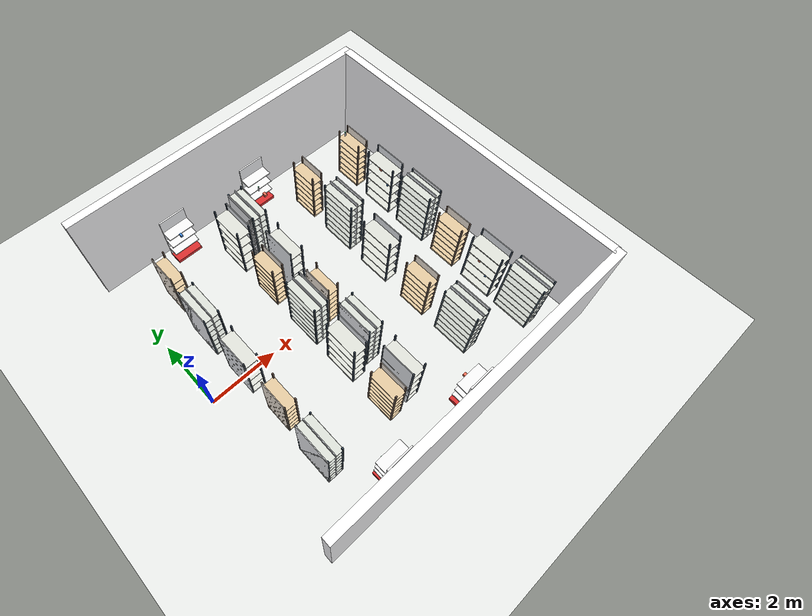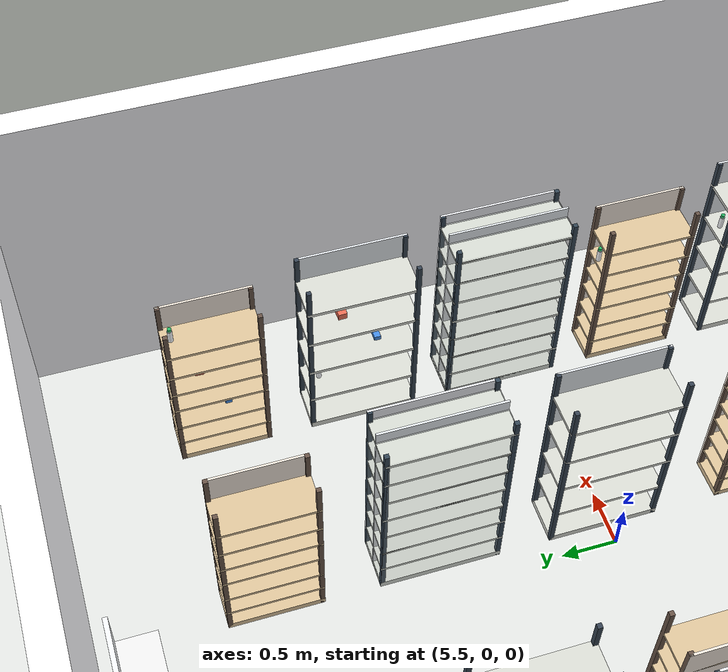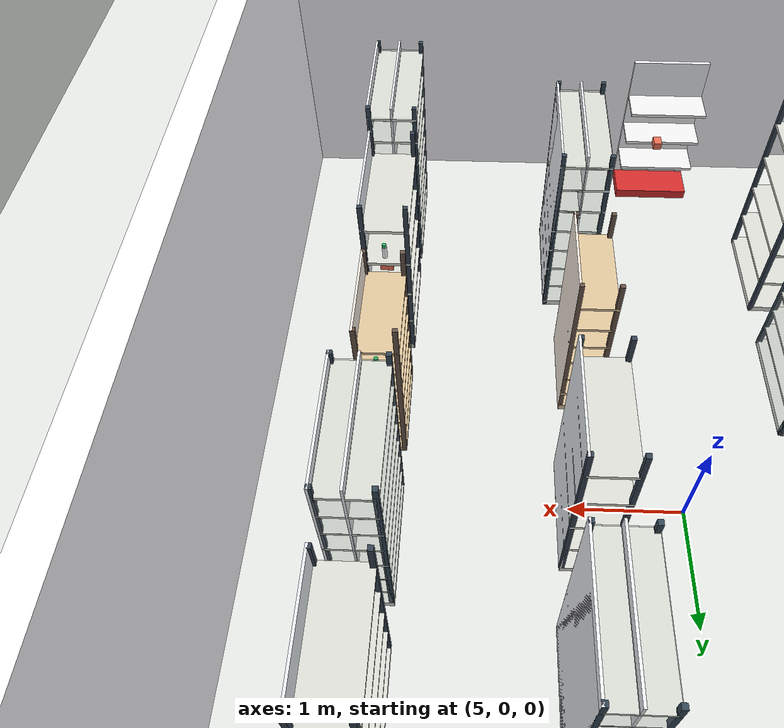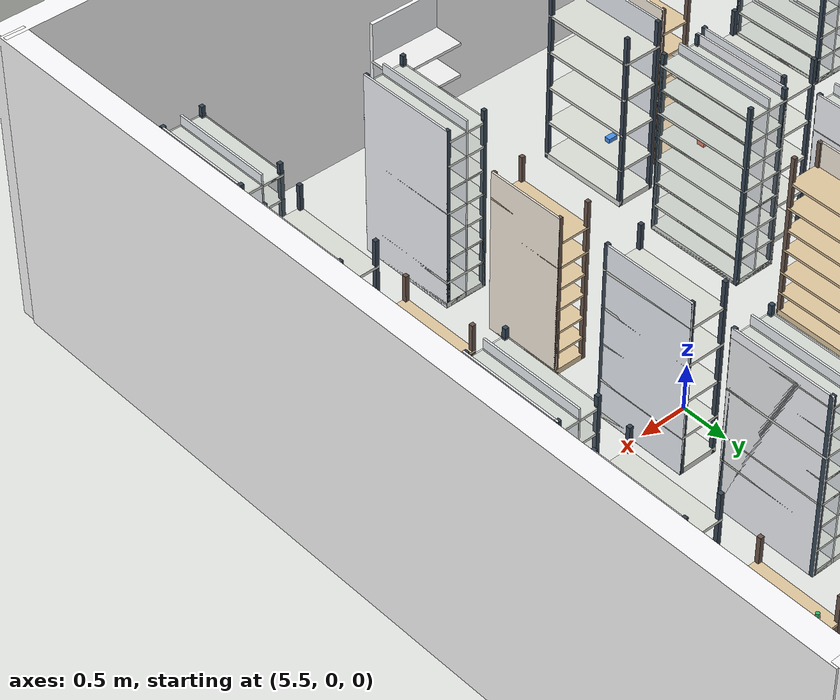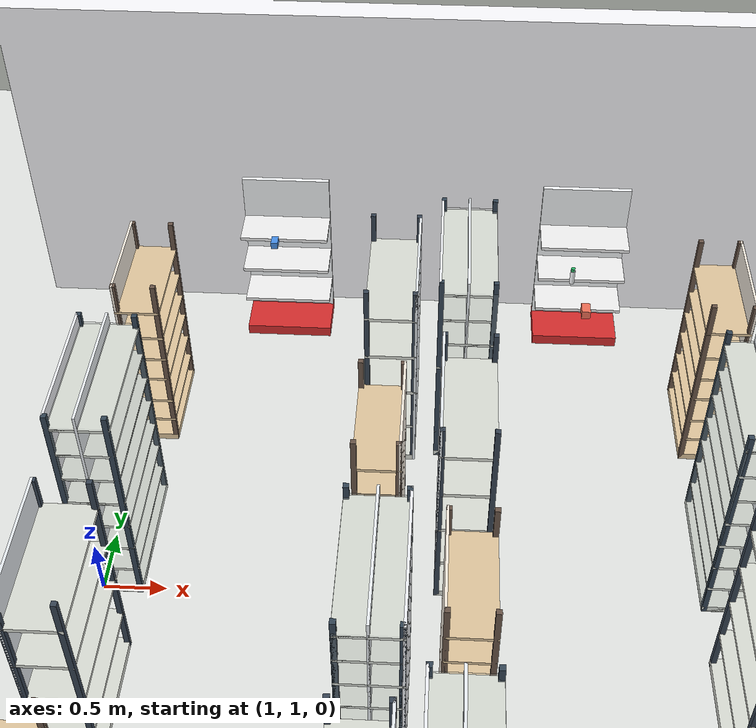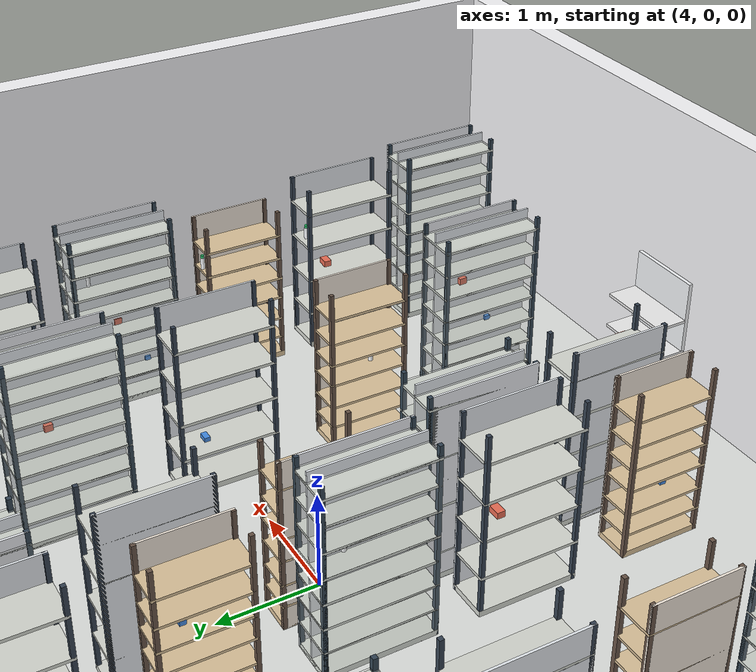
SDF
<?xml version="1.0"?>
<sdf version="1.9">
  <world name="medipick_pharmacy">
    <plugin filename="ignition-gazebo-physics-system" name="ignition::gazebo::systems::Physics"/>
    <plugin filename="ignition-gazebo-user-commands-system" name="ignition::gazebo::systems::UserCommands"/>
    <plugin filename="ignition-gazebo-scene-broadcaster-system" name="ignition::gazebo::systems::SceneBroadcaster"/>
    <plugin filename="ignition-gazebo-sensors-system" name="ignition::gazebo::systems::Sensors">
      <render_engine>ogre2</render_engine>
    </plugin>
    <plugin filename="ignition-gazebo-imu-system" name="ignition::gazebo::systems::Imu"/>
    <plugin filename="ignition-gazebo-contact-system" name="ignition::gazebo::systems::Contact"/>

    <gravity>0 0 -9.8</gravity>

    <scene>
      <ambient>0.74 0.75 0.77 1</ambient>
      <background>0.95 0.96 0.98 1</background>
      <shadows>true</shadows>
    </scene>

    <light name="sun" type="directional">
      <cast_shadows>true</cast_shadows>
      <pose>0 0 12 0 0 0</pose>
      <diffuse>0.88 0.88 0.86 1</diffuse>
      <specular>0.25 0.25 0.25 1</specular>
      <direction>-0.45 0.18 -0.88</direction>
    </light>

    <model name="ground_plane">
      <static>true</static>
      <link name="link">
        <collision name="collision">
          <geometry>
            <plane>
              <normal>0 0 1</normal>
              <size>18 14</size>
            </plane>
          </geometry>
        </collision>
        <visual name="visual">
          <geometry>
            <plane>
              <normal>0 0 1</normal>
              <size>18 14</size>
            </plane>
          </geometry>
          <material>
            <ambient>0.84 0.85 0.84 1</ambient>
            <diffuse>0.90 0.91 0.90 1</diffuse>
            <specular>0.05 0.05 0.05 1</specular>
          </material>
        </visual>
      </link>
    </model>

    <model name="room_shell">
      <static>true</static>
      <link name="walls">
        <collision name="back_wall_collision">
          <pose>8.85 0 1.55 0 0 0</pose>
          <geometry><box><size>0.24 9.20 3.10</size></box></geometry>
        </collision>
        <collision name="left_wall_collision">
          <pose>4.35 4.65 1.55 0 0 0</pose>
          <geometry><box><size>9.20 0.24 3.10</size></box></geometry>
        </collision>
        <collision name="right_wall_collision">
          <pose>4.35 -4.65 1.55 0 0 0</pose>
          <geometry><box><size>9.20 0.24 3.10</size></box></geometry>
        </collision>
        <visual name="back_wall_visual">
          <pose>8.85 0 1.55 0 0 0</pose>
          <geometry><box><size>0.24 9.20 3.10</size></box></geometry>
          <material><ambient>0.96 0.97 0.98 1</ambient><diffuse>0.99 0.99 1.0 1</diffuse></material>
        </visual>
        <visual name="left_wall_visual">
          <pose>4.35 4.65 1.55 0 0 0</pose>
          <geometry><box><size>9.20 0.24 3.10</size></box></geometry>
          <material><ambient>0.96 0.97 0.98 1</ambient><diffuse>0.99 0.99 1.0 1</diffuse></material>
        </visual>
        <visual name="right_wall_visual">
          <pose>4.35 -4.65 1.55 0 0 0</pose>
          <geometry><box><size>9.20 0.24 3.10</size></box></geometry>
          <material><ambient>0.96 0.97 0.98 1</ambient><diffuse>0.99 0.99 1.0 1</diffuse></material>
        </visual>
      </link>
    </model>

    <!-- Back wall shelves -->
    <include><name>back_shelf_01</name><uri>model://pharmacy_shelf_dense</uri><pose>7.45 -3.45 0 0 0 0</pose></include>
    <include><name>back_shelf_02</name><uri>model://pharmacy_shelf</uri><pose>7.45 -2.20 0 0 0 0</pose></include>
    <include><name>back_shelf_03</name><uri>model://pharmacy_shelf_compact</uri><pose>7.45 -0.95 0 0 0 0</pose></include>
    <include><name>back_shelf_04</name><uri>model://pharmacy_shelf_dense</uri><pose>7.45 0.35 0 0 0 0</pose></include>
    <include><name>back_shelf_05</name><uri>model://pharmacy_shelf</uri><pose>7.45 1.70 0 0 0 0</pose></include>
    <include><name>back_shelf_06</name><uri>model://pharmacy_shelf_compact</uri><pose>7.45 3.00 0 0 0 0</pose></include>

    <!-- Aisle A -->
    <include><name>aisle_a_left_01</name><uri>model://pharmacy_shelf_dense</uri><pose>5.70 -2.85 0 0 0 0</pose></include>
    <include><name>aisle_a_left_02</name><uri>model://pharmacy_shelf_compact</uri><pose>5.70 -1.45 0 0 0 0</pose></include>
    <include><name>aisle_a_left_03</name><uri>model://pharmacy_shelf</uri><pose>5.70 0.05 0 0 0 0</pose></include>
    <include><name>aisle_a_left_04</name><uri>model://pharmacy_shelf_dense</uri><pose>5.70 1.55 0 0 0 0</pose></include>
    <include><name>aisle_a_left_05</name><uri>model://pharmacy_shelf_compact</uri><pose>5.70 3.00 0 0 0 0</pose></include>

    <include><name>aisle_a_right_01</name><uri>model://pharmacy_shelf</uri><pose>4.00 -2.80 0 0 0 3.141592653589793</pose></include>
    <include><name>aisle_a_right_02</name><uri>model://pharmacy_shelf_dense</uri><pose>4.00 -1.35 0 0 0 3.141592653589793</pose></include>
    <include><name>aisle_a_right_03</name><uri>model://pharmacy_shelf_compact</uri><pose>4.00 0.10 0 0 0 3.141592653589793</pose></include>
    <include><name>aisle_a_right_04</name><uri>model://pharmacy_shelf</uri><pose>4.00 1.55 0 0 0 3.141592653589793</pose></include>
    <include><name>aisle_a_right_05</name><uri>model://pharmacy_shelf_dense</uri><pose>4.00 3.05 0 0 0 3.141592653589793</pose></include>

    <!-- Aisle B -->
    <include><name>aisle_b_left_01</name><uri>model://pharmacy_shelf_compact</uri><pose>3.00 -2.95 0 0 0 0</pose></include>
    <include><name>aisle_b_left_02</name><uri>model://pharmacy_shelf</uri><pose>3.00 -1.50 0 0 0 0</pose></include>
    <include><name>aisle_b_left_03</name><uri>model://pharmacy_shelf_dense</uri><pose>3.00 -0.05 0 0 0 0</pose></include>
    <include><name>aisle_b_left_04</name><uri>model://pharmacy_shelf_compact</uri><pose>3.00 1.45 0 0 0 0</pose></include>
    <include><name>aisle_b_left_05</name><uri>model://pharmacy_shelf</uri><pose>3.00 2.95 0 0 0 0</pose></include>

    <include><name>aisle_b_right_01</name><uri>model://pharmacy_shelf_dense</uri><pose>1.30 -2.90 0 0 0 3.141592653589793</pose></include>
    <include><name>aisle_b_right_02</name><uri>model://pharmacy_shelf_compact</uri><pose>1.30 -1.45 0 0 0 3.141592653589793</pose></include>
    <include><name>aisle_b_right_03</name><uri>model://pharmacy_shelf</uri><pose>1.30 0.00 0 0 0 3.141592653589793</pose></include>
    <include><name>aisle_b_right_04</name><uri>model://pharmacy_shelf_dense</uri><pose>1.30 1.50 0 0 0 3.141592653589793</pose></include>
    <include><name>aisle_b_right_05</name><uri>model://pharmacy_shelf_compact</uri><pose>1.30 3.00 0 0 0 3.141592653589793</pose></include>

    <!-- Endcap displays -->
    <include><name>endcap_a_top</name><uri>model://pharmacy_endcap_display</uri><pose>4.85 4.00 0 0 0 1.5707963267948966</pose></include>
    <include><name>endcap_a_bottom</name><uri>model://pharmacy_endcap_display</uri><pose>4.85 -4.00 0 0 0 -1.5707963267948966</pose></include>
    <include><name>endcap_b_top</name><uri>model://pharmacy_endcap_display</uri><pose>2.15 4.00 0 0 0 1.5707963267948966</pose></include>
    <include><name>endcap_b_bottom</name><uri>model://pharmacy_endcap_display</uri><pose>2.15 -4.00 0 0 0 -1.5707963267948966</pose></include>

    <!-- Back wall products -->
    <include><name>prod_back_01</name><uri>model://medicine_box_small</uri><pose>7.68 -3.62 0.29 0 0 0</pose></include>
    <include><name>prod_back_02</name><uri>model://medicine_box_medium</uri><pose>7.70 -3.32 0.55 0 0 0.08</pose></include>
    <include><name>prod_back_03</name><uri>model://medicine_bottle</uri><pose>7.67 -3.00 1.07 0 0 0</pose></include>
    <include><name>prod_back_04</name><uri>model://medicine_box_small</uri><pose>7.66 -2.34 0.42 0 0 0</pose></include>
    <include><name>prod_back_05</name><uri>model://medicine_box_medium</uri><pose>7.68 -2.02 0.82 0 0 -0.06</pose></include>
    <include><name>prod_back_06</name><uri>model://medicine_bottle</uri><pose>7.66 -1.78 1.22 0 0 0</pose></include>
    <include><name>prod_back_07</name><uri>model://medicine_box_small</uri><pose>7.62 -1.08 0.25 0 0 0</pose></include>
    <include><name>prod_back_08</name><uri>model://medicine_box_medium</uri><pose>7.64 -0.82 0.74 0 0 0</pose></include>
    <include><name>prod_back_09</name><uri>model://medicine_bottle</uri><pose>7.62 -0.56 1.21 0 0 0</pose></include>
    <include><name>prod_back_10</name><uri>model://medicine_box_small</uri><pose>7.68 0.12 0.29 0 0 0</pose></include>
    <include><name>prod_back_11</name><uri>model://medicine_box_medium</uri><pose>7.70 0.40 0.81 0 0 0.05</pose></include>
    <include><name>prod_back_12</name><uri>model://medicine_bottle</uri><pose>7.66 0.66 1.33 0 0 0</pose></include>
    <include><name>prod_back_13</name><uri>model://medicine_box_small</uri><pose>7.66 1.52 0.82 0 0 0</pose></include>
    <include><name>prod_back_14</name><uri>model://medicine_box_medium</uri><pose>7.68 1.84 1.22 0 0 0.04</pose></include>
    <include><name>prod_back_15</name><uri>model://medicine_bottle</uri><pose>7.66 2.06 0.42 0 0 0</pose></include>
    <include><name>prod_back_16</name><uri>model://medicine_box_small</uri><pose>7.62 2.92 0.48 0 0 0</pose></include>
    <include><name>prod_back_17</name><uri>model://medicine_box_medium</uri><pose>7.64 3.14 0.97 0 0 -0.05</pose></include>
    <include><name>prod_back_18</name><uri>model://medicine_bottle</uri><pose>7.62 3.34 1.48 0 0 0</pose></include>

    <!-- Aisle A products -->
    <include><name>prod_a_01</name><uri>model://medicine_box_small</uri><pose>5.92 -2.94 0.81 0 0 0</pose></include>
    <include><name>prod_a_02</name><uri>model://medicine_box_medium</uri><pose>5.92 -2.62 1.33 0 0 0.05</pose></include>
    <include><name>prod_a_03</name><uri>model://medicine_bottle</uri><pose>5.90 -1.58 0.74 0 0 0</pose></include>
    <include><name>prod_a_04</name><uri>model://medicine_box_small</uri><pose>5.90 0.22 0.42 0 0 0</pose></include>
    <include><name>prod_a_05</name><uri>model://medicine_box_medium</uri><pose>5.92 1.70 1.07 0 0 0</pose></include>
    <include><name>prod_a_06</name><uri>model://medicine_bottle</uri><pose>5.92 3.14 1.21 0 0 0</pose></include>
    <include><name>prod_a_07</name><uri>model://medicine_box_small</uri><pose>3.78 -2.68 0.42 0 0 0</pose></include>
    <include><name>prod_a_08</name><uri>model://medicine_box_medium</uri><pose>3.78 -1.52 1.07 0 0 0</pose></include>
    <include><name>prod_a_09</name><uri>model://medicine_bottle</uri><pose>3.80 0.20 0.74 0 0 0</pose></include>
    <include><name>prod_a_10</name><uri>model://medicine_box_small</uri><pose>3.78 1.72 0.82 0 0 0</pose></include>
    <include><name>prod_a_11</name><uri>model://medicine_box_medium</uri><pose>3.80 3.16 1.33 0 0 0.08</pose></include>

    <!-- Aisle B products -->
    <include><name>prod_b_01</name><uri>model://medicine_box_small</uri><pose>3.22 -3.08 0.48 0 0 0</pose></include>
    <include><name>prod_b_02</name><uri>model://medicine_box_medium</uri><pose>3.22 -1.30 0.82 0 0 0</pose></include>
    <include><name>prod_b_03</name><uri>model://medicine_bottle</uri><pose>3.20 0.18 1.07 0 0 0</pose></include>
    <include><name>prod_b_04</name><uri>model://medicine_box_small</uri><pose>3.20 1.58 0.97 0 0 0</pose></include>
    <include><name>prod_b_05</name><uri>model://medicine_box_medium</uri><pose>3.22 3.12 0.42 0 0 -0.04</pose></include>
    <include><name>prod_b_06</name><uri>model://medicine_box_small</uri><pose>1.08 -2.72 1.07 0 0 0</pose></include>
    <include><name>prod_b_07</name><uri>model://medicine_box_medium</uri><pose>1.10 -1.34 0.74 0 0 0</pose></include>
    <include><name>prod_b_08</name><uri>model://medicine_bottle</uri><pose>1.12 0.12 0.42 0 0 0</pose></include>
    <include><name>prod_b_09</name><uri>model://medicine_box_small</uri><pose>1.10 1.68 1.33 0 0 0</pose></include>
    <include><name>prod_b_10</name><uri>model://medicine_box_medium</uri><pose>1.08 3.18 0.97 0 0 0.06</pose></include>

    <!-- Endcap products -->
    <include><name>prod_endcap_01</name><uri>model://medicine_box_medium</uri><pose>4.92 3.94 0.42 0 0 1.57</pose></include>
    <include><name>prod_endcap_02</name><uri>model://medicine_bottle</uri><pose>4.76 3.96 0.78 0 0 1.57</pose></include>
    <include><name>prod_endcap_03</name><uri>model://medicine_box_small</uri><pose>2.08 3.92 1.14 0 0 1.57</pose></include>
    <include><name>prod_endcap_04</name><uri>model://medicine_box_medium</uri><pose>4.92 -3.94 0.78 0 0 -1.57</pose></include>
    <include><name>prod_endcap_05</name><uri>model://medicine_bottle</uri><pose>2.08 -3.92 0.42 0 0 -1.57</pose></include>
  </world>
</sdf>

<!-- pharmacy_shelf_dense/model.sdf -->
<sdf version="1.9">
  <model name="pharmacy_shelf_dense">
    <static>true</static>
    <link name="body">
      <collision name="left_post_collision">
        <pose>0.0 -0.52 0.99 0 0 0</pose>
        <geometry>
          <box>
            <size>0.04 0.04 1.98</size>
          </box>
        </geometry>
      </collision>
      <collision name="right_post_collision">
        <pose>0.0 0.52 0.99 0 0 0</pose>
        <geometry>
          <box>
            <size>0.04 0.04 1.98</size>
          </box>
        </geometry>
      </collision>
      <collision name="rear_left_post_collision">
        <pose>0.42 -0.52 0.99 0 0 0</pose>
        <geometry>
          <box>
            <size>0.04 0.04 1.98</size>
          </box>
        </geometry>
      </collision>
      <collision name="rear_right_post_collision">
        <pose>0.42 0.52 0.99 0 0 0</pose>
        <geometry>
          <box>
            <size>0.04 0.04 1.98</size>
          </box>
        </geometry>
      </collision>
      <collision name="back_panel_collision">
        <pose>0.43 0.0 0.99 0 0 0</pose>
        <geometry>
          <box>
            <size>0.02 1.08 1.98</size>
          </box>
        </geometry>
      </collision>
      <collision name="level_bottom_collision">
        <pose>0.21 0.0 0.03 0 0 0</pose>
        <geometry>
          <box>
            <size>0.46 1.08 0.06</size>
          </box>
        </geometry>
      </collision>
      <collision name="level_1_collision">
        <pose>0.21 0.0 0.29 0 0 0</pose>
        <geometry>
          <box>
            <size>0.46 1.08 0.025</size>
          </box>
        </geometry>
      </collision>
      <collision name="level_2_collision">
        <pose>0.21 0.0 0.55 0 0 0</pose>
        <geometry>
          <box>
            <size>0.46 1.08 0.025</size>
          </box>
        </geometry>
      </collision>
      <collision name="level_3_collision">
        <pose>0.21 0.0 0.81 0 0 0</pose>
        <geometry>
          <box>
            <size>0.46 1.08 0.025</size>
          </box>
        </geometry>
      </collision>
      <collision name="level_4_collision">
        <pose>0.21 0.0 1.07 0 0 0</pose>
        <geometry>
          <box>
            <size>0.46 1.08 0.025</size>
          </box>
        </geometry>
      </collision>
      <collision name="level_5_collision">
        <pose>0.21 0.0 1.33 0 0 0</pose>
        <geometry>
          <box>
            <size>0.46 1.08 0.025</size>
          </box>
        </geometry>
      </collision>
      <collision name="level_6_collision">
        <pose>0.21 0.0 1.59 0 0 0</pose>
        <geometry>
          <box>
            <size>0.46 1.08 0.025</size>
          </box>
        </geometry>
      </collision>
      <collision name="top_collision">
        <pose>0.21 0.0 1.85 0 0 0</pose>
        <geometry>
          <box>
            <size>0.46 1.08 0.025</size>
          </box>
        </geometry>
      </collision>

      <visual name="frame_visual">
        <pose>0.21 0.0 0.99 0 0 0</pose>
        <geometry>
          <box>
            <size>0.02 1.08 1.98</size>
          </box>
        </geometry>
        <material>
          <ambient>0.86 0.88 0.90 1</ambient>
          <diffuse>0.93 0.95 0.97 1</diffuse>
          <specular>0.08 0.08 0.08 1</specular>
        </material>
      </visual>
      <visual name="left_post_visual">
        <pose>0.0 -0.52 0.99 0 0 0</pose>
        <geometry><box><size>0.04 0.04 1.98</size></box></geometry>
        <material><ambient>0.18 0.24 0.29 1</ambient><diffuse>0.21 0.28 0.34 1</diffuse></material>
      </visual>
      <visual name="right_post_visual">
        <pose>0.0 0.52 0.99 0 0 0</pose>
        <geometry><box><size>0.04 0.04 1.98</size></box></geometry>
        <material><ambient>0.18 0.24 0.29 1</ambient><diffuse>0.21 0.28 0.34 1</diffuse></material>
      </visual>
      <visual name="rear_left_post_visual">
        <pose>0.42 -0.52 0.99 0 0 0</pose>
        <geometry><box><size>0.04 0.04 1.98</size></box></geometry>
        <material><ambient>0.18 0.24 0.29 1</ambient><diffuse>0.21 0.28 0.34 1</diffuse></material>
      </visual>
      <visual name="rear_right_post_visual">
        <pose>0.42 0.52 0.99 0 0 0</pose>
        <geometry><box><size>0.04 0.04 1.98</size></box></geometry>
        <material><ambient>0.18 0.24 0.29 1</ambient><diffuse>0.21 0.28 0.34 1</diffuse></material>
      </visual>
      <visual name="back_panel_visual">
        <pose>0.43 0.0 0.99 0 0 0</pose>
        <geometry><box><size>0.02 1.08 1.98</size></box></geometry>
        <material><ambient>0.88 0.90 0.93 1</ambient><diffuse>0.95 0.96 0.98 1</diffuse></material>
      </visual>
      <visual name="boards_visual">
        <pose>0.21 0.0 0.94 0 0 0</pose>
        <geometry>
          <box>
            <size>0.46 1.08 1.88</size>
          </box>
        </geometry>
        <material>
          <ambient>0.78 0.80 0.77 0.15</ambient>
          <diffuse>0.84 0.86 0.83 0.15</diffuse>
        </material>
      </visual>
      <visual name="level_bottom_visual">
        <pose>0.21 0.0 0.03 0 0 0</pose>
        <geometry><box><size>0.46 1.08 0.06</size></box></geometry>
        <material><ambient>0.78 0.80 0.77 1</ambient><diffuse>0.86 0.88 0.85 1</diffuse></material>
      </visual>
      <visual name="level_1_visual">
        <pose>0.21 0.0 0.29 0 0 0</pose>
        <geometry><box><size>0.46 1.08 0.025</size></box></geometry>
        <material><ambient>0.78 0.80 0.77 1</ambient><diffuse>0.86 0.88 0.85 1</diffuse></material>
      </visual>
      <visual name="level_2_visual">
        <pose>0.21 0.0 0.55 0 0 0</pose>
        <geometry><box><size>0.46 1.08 0.025</size></box></geometry>
        <material><ambient>0.78 0.80 0.77 1</ambient><diffuse>0.86 0.88 0.85 1</diffuse></material>
      </visual>
      <visual name="level_3_visual">
        <pose>0.21 0.0 0.81 0 0 0</pose>
        <geometry><box><size>0.46 1.08 0.025</size></box></geometry>
        <material><ambient>0.78 0.80 0.77 1</ambient><diffuse>0.86 0.88 0.85 1</diffuse></material>
      </visual>
      <visual name="level_4_visual">
        <pose>0.21 0.0 1.07 0 0 0</pose>
        <geometry><box><size>0.46 1.08 0.025</size></box></geometry>
        <material><ambient>0.78 0.80 0.77 1</ambient><diffuse>0.86 0.88 0.85 1</diffuse></material>
      </visual>
      <visual name="level_5_visual">
        <pose>0.21 0.0 1.33 0 0 0</pose>
        <geometry><box><size>0.46 1.08 0.025</size></box></geometry>
        <material><ambient>0.78 0.80 0.77 1</ambient><diffuse>0.86 0.88 0.85 1</diffuse></material>
      </visual>
      <visual name="level_6_visual">
        <pose>0.21 0.0 1.59 0 0 0</pose>
        <geometry><box><size>0.46 1.08 0.025</size></box></geometry>
        <material><ambient>0.78 0.80 0.77 1</ambient><diffuse>0.86 0.88 0.85 1</diffuse></material>
      </visual>
      <visual name="top_visual">
        <pose>0.21 0.0 1.85 0 0 0</pose>
        <geometry><box><size>0.46 1.08 0.025</size></box></geometry>
        <material><ambient>0.78 0.80 0.77 1</ambient><diffuse>0.86 0.88 0.85 1</diffuse></material>
      </visual>
    </link>
  </model>
</sdf>

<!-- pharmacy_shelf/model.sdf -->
<sdf version="1.9">
  <model name="pharmacy_shelf">
    <static>true</static>
    <link name="body">
      <collision name="left_post_collision">
        <pose>0.0 -0.48 0.95 0 0 0</pose>
        <geometry>
          <box>
            <size>0.04 0.04 1.90</size>
          </box>
        </geometry>
      </collision>
      <collision name="right_post_collision">
        <pose>0.0 0.48 0.95 0 0 0</pose>
        <geometry>
          <box>
            <size>0.04 0.04 1.90</size>
          </box>
        </geometry>
      </collision>
      <collision name="rear_left_post_collision">
        <pose>0.38 -0.48 0.95 0 0 0</pose>
        <geometry>
          <box>
            <size>0.04 0.04 1.90</size>
          </box>
        </geometry>
      </collision>
      <collision name="rear_right_post_collision">
        <pose>0.38 0.48 0.95 0 0 0</pose>
        <geometry>
          <box>
            <size>0.04 0.04 1.90</size>
          </box>
        </geometry>
      </collision>
      <collision name="bottom_board_collision">
        <pose>0.19 0.0 0.03 0 0 0</pose>
        <geometry>
          <box>
            <size>0.42 1.00 0.06</size>
          </box>
        </geometry>
      </collision>
      <collision name="shelf_level_1_collision">
        <pose>0.19 0.0 0.42 0 0 0</pose>
        <geometry>
          <box>
            <size>0.42 1.00 0.03</size>
          </box>
        </geometry>
      </collision>
      <collision name="shelf_level_2_collision">
        <pose>0.19 0.0 0.82 0 0 0</pose>
        <geometry>
          <box>
            <size>0.42 1.00 0.03</size>
          </box>
        </geometry>
      </collision>
      <collision name="shelf_level_3_collision">
        <pose>0.19 0.0 1.22 0 0 0</pose>
        <geometry>
          <box>
            <size>0.42 1.00 0.03</size>
          </box>
        </geometry>
      </collision>
      <collision name="shelf_top_collision">
        <pose>0.19 0.0 1.62 0 0 0</pose>
        <geometry>
          <box>
            <size>0.42 1.00 0.03</size>
          </box>
        </geometry>
      </collision>
      <collision name="back_panel_collision">
        <pose>0.39 0.0 0.95 0 0 0</pose>
        <geometry>
          <box>
            <size>0.02 1.00 1.90</size>
          </box>
        </geometry>
      </collision>

      <visual name="left_post_visual">
        <pose>0.0 -0.48 0.95 0 0 0</pose>
        <geometry>
          <box>
            <size>0.04 0.04 1.90</size>
          </box>
        </geometry>
        <material>
          <ambient>0.18 0.22 0.28 1</ambient>
          <diffuse>0.22 0.27 0.33 1</diffuse>
          <specular>0.25 0.25 0.25 1</specular>
        </material>
      </visual>
      <visual name="right_post_visual">
        <pose>0.0 0.48 0.95 0 0 0</pose>
        <geometry>
          <box>
            <size>0.04 0.04 1.90</size>
          </box>
        </geometry>
        <material>
          <ambient>0.18 0.22 0.28 1</ambient>
          <diffuse>0.22 0.27 0.33 1</diffuse>
          <specular>0.25 0.25 0.25 1</specular>
        </material>
      </visual>
      <visual name="rear_left_post_visual">
        <pose>0.38 -0.48 0.95 0 0 0</pose>
        <geometry>
          <box>
            <size>0.04 0.04 1.90</size>
          </box>
        </geometry>
        <material>
          <ambient>0.18 0.22 0.28 1</ambient>
          <diffuse>0.22 0.27 0.33 1</diffuse>
          <specular>0.25 0.25 0.25 1</specular>
        </material>
      </visual>
      <visual name="rear_right_post_visual">
        <pose>0.38 0.48 0.95 0 0 0</pose>
        <geometry>
          <box>
            <size>0.04 0.04 1.90</size>
          </box>
        </geometry>
        <material>
          <ambient>0.18 0.22 0.28 1</ambient>
          <diffuse>0.22 0.27 0.33 1</diffuse>
          <specular>0.25 0.25 0.25 1</specular>
        </material>
      </visual>
      <visual name="bottom_board_visual">
        <pose>0.19 0.0 0.03 0 0 0</pose>
        <geometry>
          <box>
            <size>0.42 1.00 0.06</size>
          </box>
        </geometry>
        <material>
          <ambient>0.78 0.79 0.76 1</ambient>
          <diffuse>0.86 0.87 0.84 1</diffuse>
          <specular>0.10 0.10 0.10 1</specular>
        </material>
      </visual>
      <visual name="shelf_level_1_visual">
        <pose>0.19 0.0 0.42 0 0 0</pose>
        <geometry>
          <box>
            <size>0.42 1.00 0.03</size>
          </box>
        </geometry>
        <material>
          <ambient>0.78 0.79 0.76 1</ambient>
          <diffuse>0.86 0.87 0.84 1</diffuse>
          <specular>0.10 0.10 0.10 1</specular>
        </material>
      </visual>
      <visual name="shelf_level_2_visual">
        <pose>0.19 0.0 0.82 0 0 0</pose>
        <geometry>
          <box>
            <size>0.42 1.00 0.03</size>
          </box>
        </geometry>
        <material>
          <ambient>0.78 0.79 0.76 1</ambient>
          <diffuse>0.86 0.87 0.84 1</diffuse>
          <specular>0.10 0.10 0.10 1</specular>
        </material>
      </visual>
      <visual name="shelf_level_3_visual">
        <pose>0.19 0.0 1.22 0 0 0</pose>
        <geometry>
          <box>
            <size>0.42 1.00 0.03</size>
          </box>
        </geometry>
        <material>
          <ambient>0.78 0.79 0.76 1</ambient>
          <diffuse>0.86 0.87 0.84 1</diffuse>
          <specular>0.10 0.10 0.10 1</specular>
        </material>
      </visual>
      <visual name="shelf_top_visual">
        <pose>0.19 0.0 1.62 0 0 0</pose>
        <geometry>
          <box>
            <size>0.42 1.00 0.03</size>
          </box>
        </geometry>
        <material>
          <ambient>0.78 0.79 0.76 1</ambient>
          <diffuse>0.86 0.87 0.84 1</diffuse>
          <specular>0.10 0.10 0.10 1</specular>
        </material>
      </visual>
      <visual name="back_panel_visual">
        <pose>0.39 0.0 0.95 0 0 0</pose>
        <geometry>
          <box>
            <size>0.02 1.00 1.90</size>
          </box>
        </geometry>
        <material>
          <ambient>0.82 0.84 0.88 1</ambient>
          <diffuse>0.92 0.94 0.96 1</diffuse>
          <specular>0.08 0.08 0.08 1</specular>
        </material>
      </visual>
    </link>
  </model>
</sdf>

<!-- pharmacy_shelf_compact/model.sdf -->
<sdf version="1.9">
  <model name="pharmacy_shelf_compact">
    <static>true</static>
    <link name="body">
      <collision name="left_post_collision">
        <pose>0.0 -0.40 0.88 0 0 0</pose>
        <geometry><box><size>0.04 0.04 1.76</size></box></geometry>
      </collision>
      <collision name="right_post_collision">
        <pose>0.0 0.40 0.88 0 0 0</pose>
        <geometry><box><size>0.04 0.04 1.76</size></box></geometry>
      </collision>
      <collision name="rear_left_post_collision">
        <pose>0.32 -0.40 0.88 0 0 0</pose>
        <geometry><box><size>0.04 0.04 1.76</size></box></geometry>
      </collision>
      <collision name="rear_right_post_collision">
        <pose>0.32 0.40 0.88 0 0 0</pose>
        <geometry><box><size>0.04 0.04 1.76</size></box></geometry>
      </collision>
      <collision name="back_panel_collision">
        <pose>0.33 0.0 0.88 0 0 0</pose>
        <geometry><box><size>0.02 0.84 1.76</size></box></geometry>
      </collision>
      <collision name="bottom_board_collision">
        <pose>0.16 0.0 0.03 0 0 0</pose>
        <geometry><box><size>0.36 0.84 0.06</size></box></geometry>
      </collision>
      <collision name="level_1_collision">
        <pose>0.16 0.0 0.25 0 0 0</pose>
        <geometry><box><size>0.36 0.84 0.025</size></box></geometry>
      </collision>
      <collision name="level_2_collision">
        <pose>0.16 0.0 0.48 0 0 0</pose>
        <geometry><box><size>0.36 0.84 0.025</size></box></geometry>
      </collision>
      <collision name="level_3_collision">
        <pose>0.16 0.0 0.74 0 0 0</pose>
        <geometry><box><size>0.36 0.84 0.025</size></box></geometry>
      </collision>
      <collision name="level_4_collision">
        <pose>0.16 0.0 0.97 0 0 0</pose>
        <geometry><box><size>0.36 0.84 0.025</size></box></geometry>
      </collision>
      <collision name="level_5_collision">
        <pose>0.16 0.0 1.21 0 0 0</pose>
        <geometry><box><size>0.36 0.84 0.025</size></box></geometry>
      </collision>
      <collision name="level_6_collision">
        <pose>0.16 0.0 1.48 0 0 0</pose>
        <geometry><box><size>0.36 0.84 0.025</size></box></geometry>
      </collision>

      <visual name="left_post_visual">
        <pose>0.0 -0.40 0.88 0 0 0</pose>
        <geometry><box><size>0.04 0.04 1.76</size></box></geometry>
        <material><ambient>0.30 0.24 0.20 1</ambient><diffuse>0.42 0.34 0.29 1</diffuse></material>
      </visual>
      <visual name="right_post_visual">
        <pose>0.0 0.40 0.88 0 0 0</pose>
        <geometry><box><size>0.04 0.04 1.76</size></box></geometry>
        <material><ambient>0.30 0.24 0.20 1</ambient><diffuse>0.42 0.34 0.29 1</diffuse></material>
      </visual>
      <visual name="rear_left_post_visual">
        <pose>0.32 -0.40 0.88 0 0 0</pose>
        <geometry><box><size>0.04 0.04 1.76</size></box></geometry>
        <material><ambient>0.30 0.24 0.20 1</ambient><diffuse>0.42 0.34 0.29 1</diffuse></material>
      </visual>
      <visual name="rear_right_post_visual">
        <pose>0.32 0.40 0.88 0 0 0</pose>
        <geometry><box><size>0.04 0.04 1.76</size></box></geometry>
        <material><ambient>0.30 0.24 0.20 1</ambient><diffuse>0.42 0.34 0.29 1</diffuse></material>
      </visual>
      <visual name="back_panel_visual">
        <pose>0.33 0.0 0.88 0 0 0</pose>
        <geometry><box><size>0.02 0.84 1.76</size></box></geometry>
        <material><ambient>0.90 0.86 0.80 1</ambient><diffuse>0.97 0.93 0.88 1</diffuse></material>
      </visual>
      <visual name="bottom_board_visual">
        <pose>0.16 0.0 0.03 0 0 0</pose>
        <geometry><box><size>0.36 0.84 0.06</size></box></geometry>
        <material><ambient>0.78 0.69 0.55 1</ambient><diffuse>0.88 0.78 0.62 1</diffuse></material>
      </visual>
      <visual name="level_1_visual">
        <pose>0.16 0.0 0.25 0 0 0</pose>
        <geometry><box><size>0.36 0.84 0.025</size></box></geometry>
        <material><ambient>0.78 0.69 0.55 1</ambient><diffuse>0.88 0.78 0.62 1</diffuse></material>
      </visual>
      <visual name="level_2_visual">
        <pose>0.16 0.0 0.48 0 0 0</pose>
        <geometry><box><size>0.36 0.84 0.025</size></box></geometry>
        <material><ambient>0.78 0.69 0.55 1</ambient><diffuse>0.88 0.78 0.62 1</diffuse></material>
      </visual>
      <visual name="level_3_visual">
        <pose>0.16 0.0 0.74 0 0 0</pose>
        <geometry><box><size>0.36 0.84 0.025</size></box></geometry>
        <material><ambient>0.78 0.69 0.55 1</ambient><diffuse>0.88 0.78 0.62 1</diffuse></material>
      </visual>
      <visual name="level_4_visual">
        <pose>0.16 0.0 0.97 0 0 0</pose>
        <geometry><box><size>0.36 0.84 0.025</size></box></geometry>
        <material><ambient>0.78 0.69 0.55 1</ambient><diffuse>0.88 0.78 0.62 1</diffuse></material>
      </visual>
      <visual name="level_5_visual">
        <pose>0.16 0.0 1.21 0 0 0</pose>
        <geometry><box><size>0.36 0.84 0.025</size></box></geometry>
        <material><ambient>0.78 0.69 0.55 1</ambient><diffuse>0.88 0.78 0.62 1</diffuse></material>
      </visual>
      <visual name="level_6_visual">
        <pose>0.16 0.0 1.48 0 0 0</pose>
        <geometry><box><size>0.36 0.84 0.025</size></box></geometry>
        <material><ambient>0.78 0.69 0.55 1</ambient><diffuse>0.88 0.78 0.62 1</diffuse></material>
      </visual>
    </link>
  </model>
</sdf>

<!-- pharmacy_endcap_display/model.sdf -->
<sdf version="1.9">
  <model name="pharmacy_endcap_display">
    <static>true</static>
    <link name="body">
      <collision name="base_collision">
        <pose>0.18 0 0.05 0 0 0</pose>
        <geometry><box><size>0.42 0.78 0.10</size></box></geometry>
      </collision>
      <collision name="back_panel_collision">
        <pose>0.34 0 0.78 0 0 0</pose>
        <geometry><box><size>0.04 0.78 1.56</size></box></geometry>
      </collision>
      <collision name="level_1_collision">
        <pose>0.17 0 0.42 0 0 0</pose>
        <geometry><box><size>0.36 0.78 0.03</size></box></geometry>
      </collision>
      <collision name="level_2_collision">
        <pose>0.17 0 0.78 0 0 0</pose>
        <geometry><box><size>0.36 0.78 0.03</size></box></geometry>
      </collision>
      <collision name="level_3_collision">
        <pose>0.17 0 1.14 0 0 0</pose>
        <geometry><box><size>0.36 0.78 0.03</size></box></geometry>
      </collision>

      <visual name="base_visual">
        <pose>0.18 0 0.05 0 0 0</pose>
        <geometry><box><size>0.42 0.78 0.10</size></box></geometry>
        <material><ambient>0.68 0.14 0.14 1</ambient><diffuse>0.84 0.18 0.18 1</diffuse></material>
      </visual>
      <visual name="back_panel_visual">
        <pose>0.34 0 0.78 0 0 0</pose>
        <geometry><box><size>0.04 0.78 1.56</size></box></geometry>
        <material><ambient>0.92 0.93 0.94 1</ambient><diffuse>0.97 0.98 0.99 1</diffuse></material>
      </visual>
      <visual name="level_1_visual">
        <pose>0.17 0 0.42 0 0 0</pose>
        <geometry><box><size>0.36 0.78 0.03</size></box></geometry>
        <material><ambient>0.85 0.85 0.85 1</ambient><diffuse>0.95 0.95 0.95 1</diffuse></material>
      </visual>
      <visual name="level_2_visual">
        <pose>0.17 0 0.78 0 0 0</pose>
        <geometry><box><size>0.36 0.78 0.03</size></box></geometry>
        <material><ambient>0.85 0.85 0.85 1</ambient><diffuse>0.95 0.95 0.95 1</diffuse></material>
      </visual>
      <visual name="level_3_visual">
        <pose>0.17 0 1.14 0 0 0</pose>
        <geometry><box><size>0.36 0.78 0.03</size></box></geometry>
        <material><ambient>0.85 0.85 0.85 1</ambient><diffuse>0.95 0.95 0.95 1</diffuse></material>
      </visual>
    </link>
  </model>
</sdf>

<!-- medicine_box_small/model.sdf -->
<sdf version="1.9">
  <model name="medicine_box_small">
    <static>true</static>
    <link name="body">
      <collision name="collision">
        <pose>0 0 0.03 0 0 0</pose>
        <geometry>
          <box>
            <size>0.10 0.06 0.06</size>
          </box>
        </geometry>
      </collision>
      <visual name="visual">
        <pose>0 0 0.03 0 0 0</pose>
        <geometry>
          <box>
            <size>0.10 0.06 0.06</size>
          </box>
        </geometry>
        <material>
          <ambient>0.24 0.49 0.82 1</ambient>
          <diffuse>0.28 0.57 0.92 1</diffuse>
          <specular>0.12 0.12 0.12 1</specular>
        </material>
      </visual>
    </link>
  </model>
</sdf>

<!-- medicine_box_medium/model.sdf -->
<sdf version="1.9">
  <model name="medicine_box_medium">
    <static>true</static>
    <link name="body">
      <collision name="collision">
        <pose>0 0 0.04 0 0 0</pose>
        <geometry>
          <box>
            <size>0.12 0.08 0.08</size>
          </box>
        </geometry>
      </collision>
      <visual name="visual">
        <pose>0 0 0.04 0 0 0</pose>
        <geometry>
          <box>
            <size>0.12 0.08 0.08</size>
          </box>
        </geometry>
        <material>
          <ambient>0.86 0.38 0.29 1</ambient>
          <diffuse>0.94 0.44 0.34 1</diffuse>
          <specular>0.12 0.12 0.12 1</specular>
        </material>
      </visual>
    </link>
  </model>
</sdf>

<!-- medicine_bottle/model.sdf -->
<sdf version="1.9">
  <model name="medicine_bottle">
    <static>true</static>
    <link name="body">
      <collision name="body_collision">
        <pose>0 0 0.07 0 0 0</pose>
        <geometry>
          <cylinder>
            <radius>0.022</radius>
            <length>0.14</length>
          </cylinder>
        </geometry>
      </collision>
      <collision name="cap_collision">
        <pose>0 0 0.155 0 0 0</pose>
        <geometry>
          <cylinder>
            <radius>0.018</radius>
            <length>0.03</length>
          </cylinder>
        </geometry>
      </collision>
      <visual name="body_visual">
        <pose>0 0 0.07 0 0 0</pose>
        <geometry>
          <cylinder>
            <radius>0.022</radius>
            <length>0.14</length>
          </cylinder>
        </geometry>
        <material>
          <ambient>0.92 0.93 0.95 1</ambient>
          <diffuse>0.97 0.98 0.99 1</diffuse>
          <specular>0.18 0.18 0.18 1</specular>
        </material>
      </visual>
      <visual name="cap_visual">
        <pose>0 0 0.155 0 0 0</pose>
        <geometry>
          <cylinder>
            <radius>0.018</radius>
            <length>0.03</length>
          </cylinder>
        </geometry>
        <material>
          <ambient>0.14 0.62 0.36 1</ambient>
          <diffuse>0.16 0.72 0.40 1</diffuse>
          <specular>0.10 0.10 0.10 1</specular>
        </material>
      </visual>
    </link>
  </model>
</sdf>
